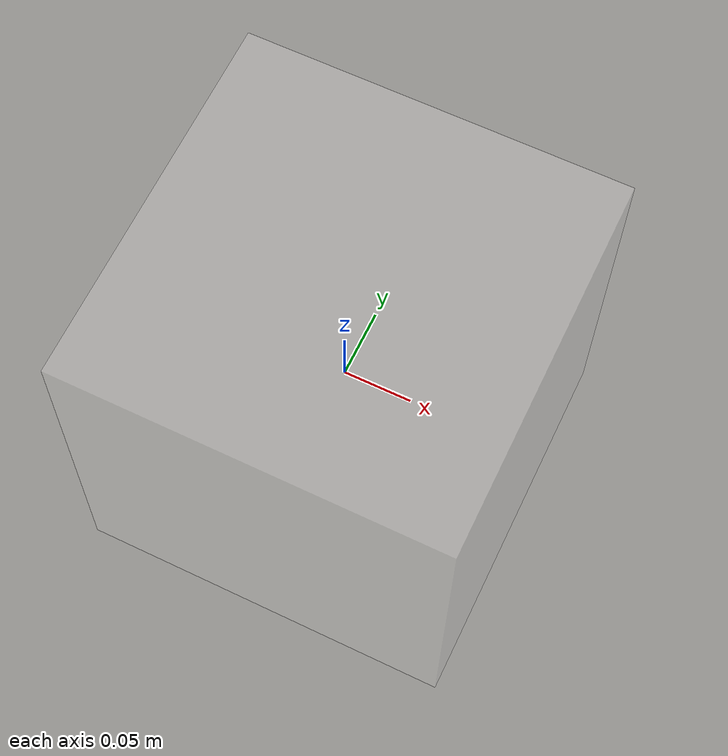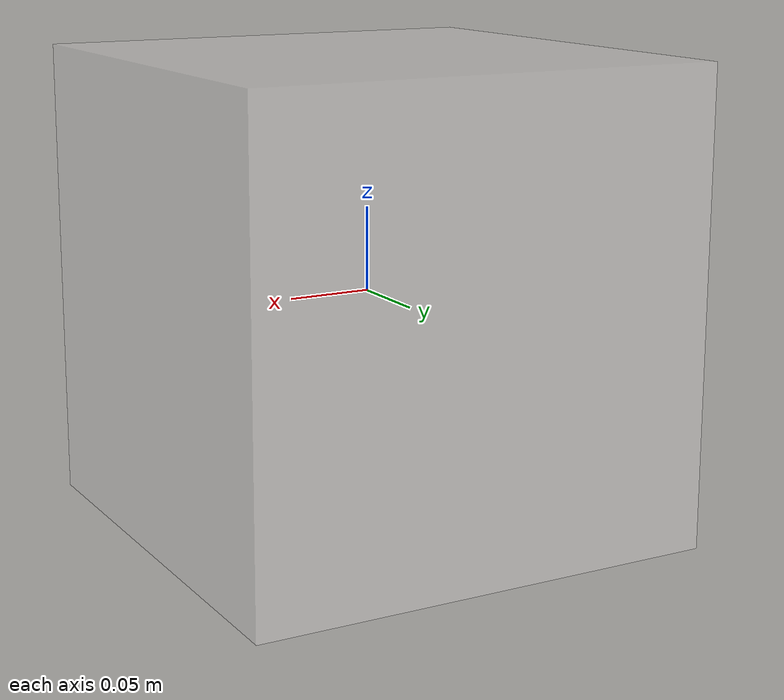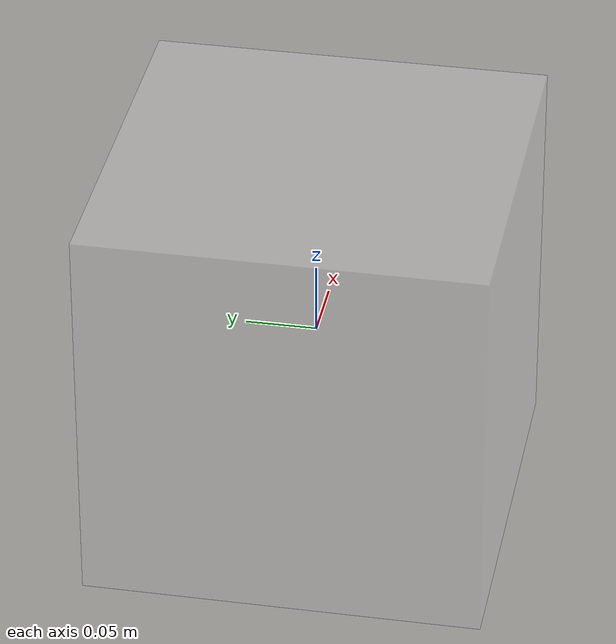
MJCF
<mujoco model="sbox-visual">
  <worldbody>
    <body>
      <body name="object">
        <geom pos="0 0 0" type="box" size="0.14 0.14 0.14" rgba="1 1 1 0.1" conaffinity="0" contype="0" group="1" mass="0.0001"/>
      </body>
      <site rgba="0 0 0 0" size="0" pos="0 0 0" name="bottom_site"/>
      <site rgba="0 0 0 0" size="0" pos="0 0 0" name="top_site"/>
      <site rgba="0 0 0 0" size="0" pos="0 0 0" name="horizontal_radius_site"/>
    </body>
  </worldbody>
</mujoco>
